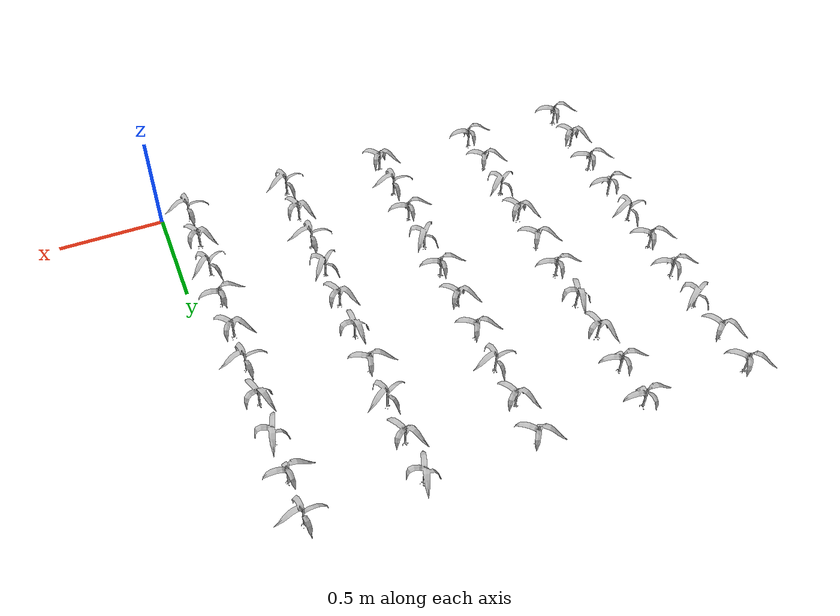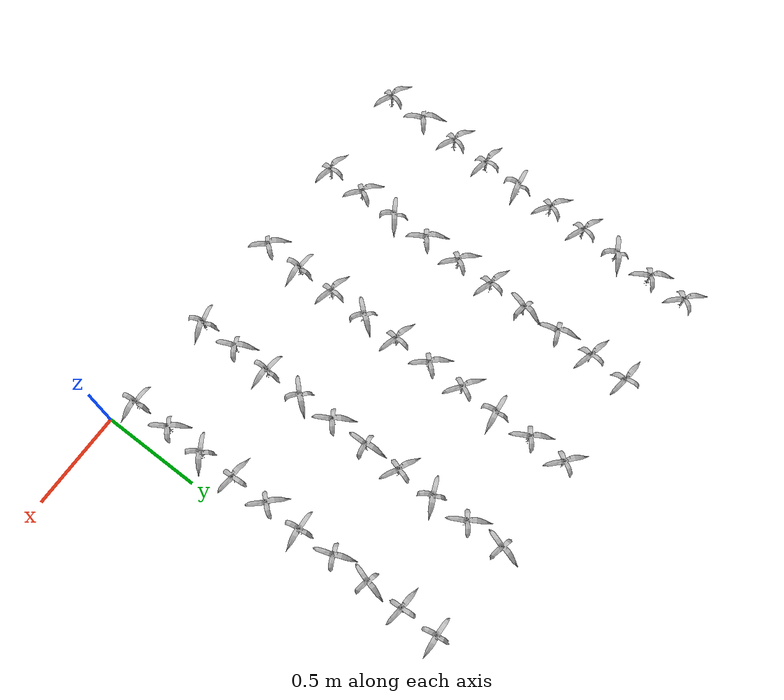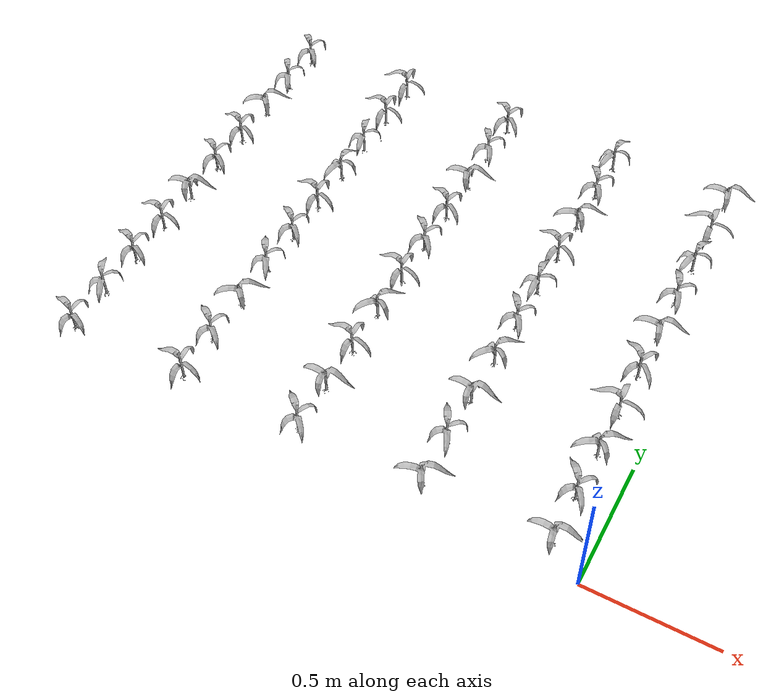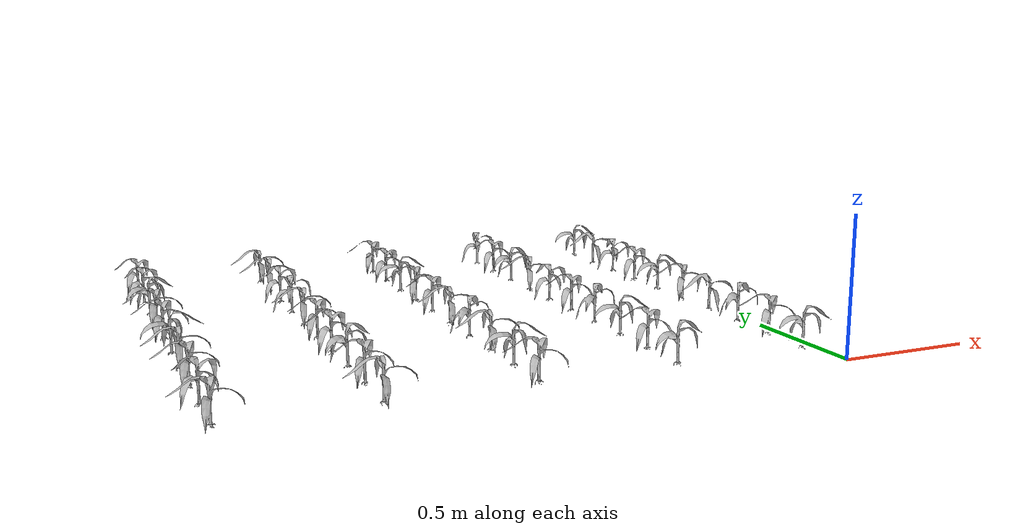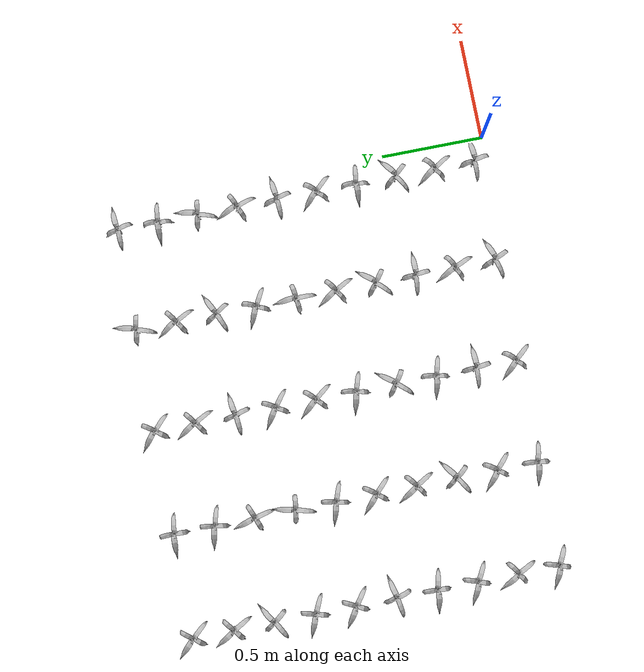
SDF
<sdf version="1.7">
 <world name="default">
  <model name="maize_-2.1093609480429203_0.07500000000000018">
   <static>1</static>
   <link name="link">
    <inertial>
     <mass>0.2</mass>
     <inertia>
      <ixx>0.166667</ixx>
      <ixy>0</ixy>
      <ixz>0</ixz>
      <iyy>0.166667</iyy>
      <iyz>0</iyz>
      <izz>0.166667</izz>
     </inertia>
    </inertial>
    <collision name="collision">
     <geometry><mesh><uri>model://corn_3/meshes/corn.dae</uri><scale>0.25 0.25 0.25</scale></mesh></geometry>
     <surface>
      <friction><ode><mu>0</mu><mu2>0</mu2></ode></friction>
      <contact><ode><kp>0</kp><kd>0</kd><max_vel>0</max_vel><min_depth>0.002</min_depth></ode></contact>
     </surface>
    </collision>
    <visual name="visual">
     <geometry><mesh><uri>model://corn_3/meshes/corn.dae</uri><scale>0.25 0.25 0.25</scale></mesh></geometry>
    </visual>
    <velocity_decay><linear>0</linear><angular>0</angular></velocity_decay>
   </link>
   <pose>-2.10936 0.075 0.05 0 -0 2.78687</pose>
  </model>
  <model name="maize_-2.1093609480429203_0.27000000000000046">
   <static>1</static>
   <link name="link">
    <inertial>
     <mass>0.2</mass>
     <inertia>
      <ixx>0.166667</ixx>
      <ixy>0</ixy>
      <ixz>0</ixz>
      <iyy>0.166667</iyy>
      <iyz>0</iyz>
      <izz>0.166667</izz>
     </inertia>
    </inertial>
    <collision name="collision">
     <geometry><mesh><uri>model://corn_3/meshes/corn.dae</uri><scale>0.25 0.25 0.25</scale></mesh></geometry>
     <surface>
      <friction><ode><mu>0</mu><mu2>0</mu2></ode></friction>
      <contact><ode><kp>0</kp><kd>0</kd><max_vel>0</max_vel><min_depth>0.002</min_depth></ode></contact>
     </surface>
    </collision>
    <visual name="visual">
     <geometry><mesh><uri>model://corn_3/meshes/corn.dae</uri><scale>0.25 0.25 0.25</scale></mesh></geometry>
    </visual>
    <velocity_decay><linear>0</linear><angular>0</angular></velocity_decay>
   </link>
   <pose>-2.10936 0.27 0.05 0 -0 2.14035</pose>
  </model>
  <model name="maize_-2.1093609480429203_0.46500000000000075">
   <static>1</static>
   <link name="link">
    <inertial>
     <mass>0.2</mass>
     <inertia>
      <ixx>0.166667</ixx>
      <ixy>0</ixy>
      <ixz>0</ixz>
      <iyy>0.166667</iyy>
      <iyz>0</iyz>
      <izz>0.166667</izz>
     </inertia>
    </inertial>
    <collision name="collision">
     <geometry><mesh><uri>model://corn_3/meshes/corn.dae</uri><scale>0.25 0.25 0.25</scale></mesh></geometry>
     <surface>
      <friction><ode><mu>0</mu><mu2>0</mu2></ode></friction>
      <contact><ode><kp>0</kp><kd>0</kd><max_vel>0</max_vel><min_depth>0.002</min_depth></ode></contact>
     </surface>
    </collision>
    <visual name="visual">
     <geometry><mesh><uri>model://corn_3/meshes/corn.dae</uri><scale>0.25 0.25 0.25</scale></mesh></geometry>
    </visual>
    <velocity_decay><linear>0</linear><angular>0</angular></velocity_decay>
   </link>
   <pose>-2.10936 0.465 0.05 0 -0 2.74985</pose>
  </model>
  <model name="maize_-2.1093609480429203_0.6600000000000001">
   <static>1</static>
   <link name="link">
    <inertial>
     <mass>0.2</mass>
     <inertia>
      <ixx>0.166667</ixx>
      <ixy>0</ixy>
      <ixz>0</ixz>
      <iyy>0.166667</iyy>
      <iyz>0</iyz>
      <izz>0.166667</izz>
     </inertia>
    </inertial>
    <collision name="collision">
     <geometry><mesh><uri>model://corn_3/meshes/corn.dae</uri><scale>0.25 0.25 0.25</scale></mesh></geometry>
     <surface>
      <friction><ode><mu>0</mu><mu2>0</mu2></ode></friction>
      <contact><ode><kp>0</kp><kd>0</kd><max_vel>0</max_vel><min_depth>0.002</min_depth></ode></contact>
     </surface>
    </collision>
    <visual name="visual">
     <geometry><mesh><uri>model://corn_3/meshes/corn.dae</uri><scale>0.25 0.25 0.25</scale></mesh></geometry>
    </visual>
    <velocity_decay><linear>0</linear><angular>0</angular></velocity_decay>
   </link>
   <pose>-2.10936 0.66 0.05 0 -0 3.03577</pose>
  </model>
  <model name="maize_-2.1093609480429203_0.8550000000000004">
   <static>1</static>
   <link name="link">
    <inertial>
     <mass>0.2</mass>
     <inertia>
      <ixx>0.166667</ixx>
      <ixy>0</ixy>
      <ixz>0</ixz>
      <iyy>0.166667</iyy>
      <iyz>0</iyz>
      <izz>0.166667</izz>
     </inertia>
    </inertial>
    <collision name="collision">
     <geometry><mesh><uri>model://corn_3/meshes/corn.dae</uri><scale>0.25 0.25 0.25</scale></mesh></geometry>
     <surface>
      <friction><ode><mu>0</mu><mu2>0</mu2></ode></friction>
      <contact><ode><kp>0</kp><kd>0</kd><max_vel>0</max_vel><min_depth>0.002</min_depth></ode></contact>
     </surface>
    </collision>
    <visual name="visual">
     <geometry><mesh><uri>model://corn_3/meshes/corn.dae</uri><scale>0.25 0.25 0.25</scale></mesh></geometry>
    </visual>
    <velocity_decay><linear>0</linear><angular>0</angular></velocity_decay>
   </link>
   <pose>-2.10936 0.855 0.05 0 -0 0.258273</pose>
  </model>
  <model name="maize_-2.1093609480429203_1.0500000000000007">
   <static>1</static>
   <link name="link">
    <inertial>
     <mass>0.2</mass>
     <inertia>
      <ixx>0.166667</ixx>
      <ixy>0</ixy>
      <ixz>0</ixz>
      <iyy>0.166667</iyy>
      <iyz>0</iyz>
      <izz>0.166667</izz>
     </inertia>
    </inertial>
    <collision name="collision">
     <geometry><mesh><uri>model://corn_3/meshes/corn.dae</uri><scale>0.25 0.25 0.25</scale></mesh></geometry>
     <surface>
      <friction><ode><mu>0</mu><mu2>0</mu2></ode></friction>
      <contact><ode><kp>0</kp><kd>0</kd><max_vel>0</max_vel><min_depth>0.002</min_depth></ode></contact>
     </surface>
    </collision>
    <visual name="visual">
     <geometry><mesh><uri>model://corn_3/meshes/corn.dae</uri><scale>0.25 0.25 0.25</scale></mesh></geometry>
    </visual>
    <velocity_decay><linear>0</linear><angular>0</angular></velocity_decay>
   </link>
   <pose>-2.10936 1.05 0.05 0 -0 2.61186</pose>
  </model>
  <model name="maize_-2.1093609480429203_1.245">
   <static>1</static>
   <link name="link">
    <inertial>
     <mass>0.2</mass>
     <inertia>
      <ixx>0.166667</ixx>
      <ixy>0</ixy>
      <ixz>0</ixz>
      <iyy>0.166667</iyy>
      <iyz>0</iyz>
      <izz>0.166667</izz>
     </inertia>
    </inertial>
    <collision name="collision">
     <geometry><mesh><uri>model://corn_3/meshes/corn.dae</uri><scale>0.25 0.25 0.25</scale></mesh></geometry>
     <surface>
      <friction><ode><mu>0</mu><mu2>0</mu2></ode></friction>
      <contact><ode><kp>0</kp><kd>0</kd><max_vel>0</max_vel><min_depth>0.002</min_depth></ode></contact>
     </surface>
    </collision>
    <visual name="visual">
     <geometry><mesh><uri>model://corn_3/meshes/corn.dae</uri><scale>0.25 0.25 0.25</scale></mesh></geometry>
    </visual>
    <velocity_decay><linear>0</linear><angular>0</angular></velocity_decay>
   </link>
   <pose>-2.10936 1.245 0.05 0 -0 2.80578</pose>
  </model>
  <model name="maize_-2.1093609480429203_1.4400000000000004">
   <static>1</static>
   <link name="link">
    <inertial>
     <mass>0.2</mass>
     <inertia>
      <ixx>0.166667</ixx>
      <ixy>0</ixy>
      <ixz>0</ixz>
      <iyy>0.166667</iyy>
      <iyz>0</iyz>
      <izz>0.166667</izz>
     </inertia>
    </inertial>
    <collision name="collision">
     <geometry><mesh><uri>model://corn_3/meshes/corn.dae</uri><scale>0.25 0.25 0.25</scale></mesh></geometry>
     <surface>
      <friction><ode><mu>0</mu><mu2>0</mu2></ode></friction>
      <contact><ode><kp>0</kp><kd>0</kd><max_vel>0</max_vel><min_depth>0.002</min_depth></ode></contact>
     </surface>
    </collision>
    <visual name="visual">
     <geometry><mesh><uri>model://corn_3/meshes/corn.dae</uri><scale>0.25 0.25 0.25</scale></mesh></geometry>
    </visual>
    <velocity_decay><linear>0</linear><angular>0</angular></velocity_decay>
   </link>
   <pose>-2.10936 1.44 0.05 0 -0 0.617863</pose>
  </model>
  <model name="maize_-2.1093609480429203_1.6350000000000007">
   <static>1</static>
   <link name="link">
    <inertial>
     <mass>0.2</mass>
     <inertia>
      <ixx>0.166667</ixx>
      <ixy>0</ixy>
      <ixz>0</ixz>
      <iyy>0.166667</iyy>
      <iyz>0</iyz>
      <izz>0.166667</izz>
     </inertia>
    </inertial>
    <collision name="collision">
     <geometry><mesh><uri>model://corn_3/meshes/corn.dae</uri><scale>0.25 0.25 0.25</scale></mesh></geometry>
     <surface>
      <friction><ode><mu>0</mu><mu2>0</mu2></ode></friction>
      <contact><ode><kp>0</kp><kd>0</kd><max_vel>0</max_vel><min_depth>0.002</min_depth></ode></contact>
     </surface>
    </collision>
    <visual name="visual">
     <geometry><mesh><uri>model://corn_3/meshes/corn.dae</uri><scale>0.25 0.25 0.25</scale></mesh></geometry>
    </visual>
    <velocity_decay><linear>0</linear><angular>0</angular></velocity_decay>
   </link>
   <pose>-2.10936 1.635 0.05 0 -0 2.17049</pose>
  </model>
  <model name="maize_-2.1093609480429203_1.83">
   <static>1</static>
   <link name="link">
    <inertial>
     <mass>0.2</mass>
     <inertia>
      <ixx>0.166667</ixx>
      <ixy>0</ixy>
      <ixz>0</ixz>
      <iyy>0.166667</iyy>
      <iyz>0</iyz>
      <izz>0.166667</izz>
     </inertia>
    </inertial>
    <collision name="collision">
     <geometry><mesh><uri>model://corn_3/meshes/corn.dae</uri><scale>0.25 0.25 0.25</scale></mesh></geometry>
     <surface>
      <friction><ode><mu>0</mu><mu2>0</mu2></ode></friction>
      <contact><ode><kp>0</kp><kd>0</kd><max_vel>0</max_vel><min_depth>0.002</min_depth></ode></contact>
     </surface>
    </collision>
    <visual name="visual">
     <geometry><mesh><uri>model://corn_3/meshes/corn.dae</uri><scale>0.25 0.25 0.25</scale></mesh></geometry>
    </visual>
    <velocity_decay><linear>0</linear><angular>0</angular></velocity_decay>
   </link>
   <pose>-2.10936 1.83 0.05 0 -0 2.40422</pose>
  </model>
  <model name="maize_-1.6134747127982658_0.07500000000000018">
   <static>1</static>
   <link name="link">
    <inertial>
     <mass>0.2</mass>
     <inertia>
      <ixx>0.166667</ixx>
      <ixy>0</ixy>
      <ixz>0</ixz>
      <iyy>0.166667</iyy>
      <iyz>0</iyz>
      <izz>0.166667</izz>
     </inertia>
    </inertial>
    <collision name="collision">
     <geometry><mesh><uri>model://corn_3/meshes/corn.dae</uri><scale>0.25 0.25 0.25</scale></mesh></geometry>
     <surface>
      <friction><ode><mu>0</mu><mu2>0</mu2></ode></friction>
      <contact><ode><kp>0</kp><kd>0</kd><max_vel>0</max_vel><min_depth>0.002</min_depth></ode></contact>
     </surface>
    </collision>
    <visual name="visual">
     <geometry><mesh><uri>model://corn_3/meshes/corn.dae</uri><scale>0.25 0.25 0.25</scale></mesh></geometry>
    </visual>
    <velocity_decay><linear>0</linear><angular>0</angular></velocity_decay>
   </link>
   <pose>-1.61347 0.075 0.05 0 -0 3.01326</pose>
  </model>
  <model name="maize_-1.6134747127982658_0.27000000000000046">
   <static>1</static>
   <link name="link">
    <inertial>
     <mass>0.2</mass>
     <inertia>
      <ixx>0.166667</ixx>
      <ixy>0</ixy>
      <ixz>0</ixz>
      <iyy>0.166667</iyy>
      <iyz>0</iyz>
      <izz>0.166667</izz>
     </inertia>
    </inertial>
    <collision name="collision">
     <geometry><mesh><uri>model://corn_3/meshes/corn.dae</uri><scale>0.25 0.25 0.25</scale></mesh></geometry>
     <surface>
      <friction><ode><mu>0</mu><mu2>0</mu2></ode></friction>
      <contact><ode><kp>0</kp><kd>0</kd><max_vel>0</max_vel><min_depth>0.002</min_depth></ode></contact>
     </surface>
    </collision>
    <visual name="visual">
     <geometry><mesh><uri>model://corn_3/meshes/corn.dae</uri><scale>0.25 0.25 0.25</scale></mesh></geometry>
    </visual>
    <velocity_decay><linear>0</linear><angular>0</angular></velocity_decay>
   </link>
   <pose>-1.61347 0.27 0.05 0 -0 2.51277</pose>
  </model>
  <model name="maize_-1.6134747127982658_0.46500000000000075">
   <static>1</static>
   <link name="link">
    <inertial>
     <mass>0.2</mass>
     <inertia>
      <ixx>0.166667</ixx>
      <ixy>0</ixy>
      <ixz>0</ixz>
      <iyy>0.166667</iyy>
      <iyz>0</iyz>
      <izz>0.166667</izz>
     </inertia>
    </inertial>
    <collision name="collision">
     <geometry><mesh><uri>model://corn_3/meshes/corn.dae</uri><scale>0.25 0.25 0.25</scale></mesh></geometry>
     <surface>
      <friction><ode><mu>0</mu><mu2>0</mu2></ode></friction>
      <contact><ode><kp>0</kp><kd>0</kd><max_vel>0</max_vel><min_depth>0.002</min_depth></ode></contact>
     </surface>
    </collision>
    <visual name="visual">
     <geometry><mesh><uri>model://corn_3/meshes/corn.dae</uri><scale>0.25 0.25 0.25</scale></mesh></geometry>
    </visual>
    <velocity_decay><linear>0</linear><angular>0</angular></velocity_decay>
   </link>
   <pose>-1.61347 0.465 0.05 0 -0 0.662346</pose>
  </model>
  <model name="maize_-1.6134747127982658_0.6600000000000001">
   <static>1</static>
   <link name="link">
    <inertial>
     <mass>0.2</mass>
     <inertia>
      <ixx>0.166667</ixx>
      <ixy>0</ixy>
      <ixz>0</ixz>
      <iyy>0.166667</iyy>
      <iyz>0</iyz>
      <izz>0.166667</izz>
     </inertia>
    </inertial>
    <collision name="collision">
     <geometry><mesh><uri>model://corn_3/meshes/corn.dae</uri><scale>0.25 0.25 0.25</scale></mesh></geometry>
     <surface>
      <friction><ode><mu>0</mu><mu2>0</mu2></ode></friction>
      <contact><ode><kp>0</kp><kd>0</kd><max_vel>0</max_vel><min_depth>0.002</min_depth></ode></contact>
     </surface>
    </collision>
    <visual name="visual">
     <geometry><mesh><uri>model://corn_3/meshes/corn.dae</uri><scale>0.25 0.25 0.25</scale></mesh></geometry>
    </visual>
    <velocity_decay><linear>0</linear><angular>0</angular></velocity_decay>
   </link>
   <pose>-1.61347 0.66 0.05 0 -0 2.19496</pose>
  </model>
  <model name="maize_-1.6134747127982658_0.8550000000000004">
   <static>1</static>
   <link name="link">
    <inertial>
     <mass>0.2</mass>
     <inertia>
      <ixx>0.166667</ixx>
      <ixy>0</ixy>
      <ixz>0</ixz>
      <iyy>0.166667</iyy>
      <iyz>0</iyz>
      <izz>0.166667</izz>
     </inertia>
    </inertial>
    <collision name="collision">
     <geometry><mesh><uri>model://corn_3/meshes/corn.dae</uri><scale>0.25 0.25 0.25</scale></mesh></geometry>
     <surface>
      <friction><ode><mu>0</mu><mu2>0</mu2></ode></friction>
      <contact><ode><kp>0</kp><kd>0</kd><max_vel>0</max_vel><min_depth>0.002</min_depth></ode></contact>
     </surface>
    </collision>
    <visual name="visual">
     <geometry><mesh><uri>model://corn_3/meshes/corn.dae</uri><scale>0.25 0.25 0.25</scale></mesh></geometry>
    </visual>
    <velocity_decay><linear>0</linear><angular>0</angular></velocity_decay>
   </link>
   <pose>-1.61347 0.855 0.05 0 -0 2.46315</pose>
  </model>
  <model name="maize_-1.6134747127982658_1.0500000000000007">
   <static>1</static>
   <link name="link">
    <inertial>
     <mass>0.2</mass>
     <inertia>
      <ixx>0.166667</ixx>
      <ixy>0</ixy>
      <ixz>0</ixz>
      <iyy>0.166667</iyy>
      <iyz>0</iyz>
      <izz>0.166667</izz>
     </inertia>
    </inertial>
    <collision name="collision">
     <geometry><mesh><uri>model://corn_3/meshes/corn.dae</uri><scale>0.25 0.25 0.25</scale></mesh></geometry>
     <surface>
      <friction><ode><mu>0</mu><mu2>0</mu2></ode></friction>
      <contact><ode><kp>0</kp><kd>0</kd><max_vel>0</max_vel><min_depth>0.002</min_depth></ode></contact>
     </surface>
    </collision>
    <visual name="visual">
     <geometry><mesh><uri>model://corn_3/meshes/corn.dae</uri><scale>0.25 0.25 0.25</scale></mesh></geometry>
    </visual>
    <velocity_decay><linear>0</linear><angular>0</angular></velocity_decay>
   </link>
   <pose>-1.61347 1.05 0.05 0 -0 2.90169</pose>
  </model>
  <model name="maize_-1.6134747127982658_1.245">
   <static>1</static>
   <link name="link">
    <inertial>
     <mass>0.2</mass>
     <inertia>
      <ixx>0.166667</ixx>
      <ixy>0</ixy>
      <ixz>0</ixz>
      <iyy>0.166667</iyy>
      <iyz>0</iyz>
      <izz>0.166667</izz>
     </inertia>
    </inertial>
    <collision name="collision">
     <geometry><mesh><uri>model://corn_3/meshes/corn.dae</uri><scale>0.25 0.25 0.25</scale></mesh></geometry>
     <surface>
      <friction><ode><mu>0</mu><mu2>0</mu2></ode></friction>
      <contact><ode><kp>0</kp><kd>0</kd><max_vel>0</max_vel><min_depth>0.002</min_depth></ode></contact>
     </surface>
    </collision>
    <visual name="visual">
     <geometry><mesh><uri>model://corn_3/meshes/corn.dae</uri><scale>0.25 0.25 0.25</scale></mesh></geometry>
    </visual>
    <velocity_decay><linear>0</linear><angular>0</angular></velocity_decay>
   </link>
   <pose>-1.61347 1.245 0.05 0 -0 1.38514</pose>
  </model>
  <model name="maize_-1.6134747127982658_1.4400000000000004">
   <static>1</static>
   <link name="link">
    <inertial>
     <mass>0.2</mass>
     <inertia>
      <ixx>0.166667</ixx>
      <ixy>0</ixy>
      <ixz>0</ixz>
      <iyy>0.166667</iyy>
      <iyz>0</iyz>
      <izz>0.166667</izz>
     </inertia>
    </inertial>
    <collision name="collision">
     <geometry><mesh><uri>model://corn_3/meshes/corn.dae</uri><scale>0.25 0.25 0.25</scale></mesh></geometry>
     <surface>
      <friction><ode><mu>0</mu><mu2>0</mu2></ode></friction>
      <contact><ode><kp>0</kp><kd>0</kd><max_vel>0</max_vel><min_depth>0.002</min_depth></ode></contact>
     </surface>
    </collision>
    <visual name="visual">
     <geometry><mesh><uri>model://corn_3/meshes/corn.dae</uri><scale>0.25 0.25 0.25</scale></mesh></geometry>
    </visual>
    <velocity_decay><linear>0</linear><angular>0</angular></velocity_decay>
   </link>
   <pose>-1.61347 1.44 0.05 0 -0 1.8957</pose>
  </model>
  <model name="maize_-1.6134747127982658_1.6350000000000007">
   <static>1</static>
   <link name="link">
    <inertial>
     <mass>0.2</mass>
     <inertia>
      <ixx>0.166667</ixx>
      <ixy>0</ixy>
      <ixz>0</ixz>
      <iyy>0.166667</iyy>
      <iyz>0</iyz>
      <izz>0.166667</izz>
     </inertia>
    </inertial>
    <collision name="collision">
     <geometry><mesh><uri>model://corn_3/meshes/corn.dae</uri><scale>0.25 0.25 0.25</scale></mesh></geometry>
     <surface>
      <friction><ode><mu>0</mu><mu2>0</mu2></ode></friction>
      <contact><ode><kp>0</kp><kd>0</kd><max_vel>0</max_vel><min_depth>0.002</min_depth></ode></contact>
     </surface>
    </collision>
    <visual name="visual">
     <geometry><mesh><uri>model://corn_3/meshes/corn.dae</uri><scale>0.25 0.25 0.25</scale></mesh></geometry>
    </visual>
    <velocity_decay><linear>0</linear><angular>0</angular></velocity_decay>
   </link>
   <pose>-1.61347 1.635 0.05 0 -0 2.96075</pose>
  </model>
  <model name="maize_-1.6134747127982658_1.83">
   <static>1</static>
   <link name="link">
    <inertial>
     <mass>0.2</mass>
     <inertia>
      <ixx>0.166667</ixx>
      <ixy>0</ixy>
      <ixz>0</ixz>
      <iyy>0.166667</iyy>
      <iyz>0</iyz>
      <izz>0.166667</izz>
     </inertia>
    </inertial>
    <collision name="collision">
     <geometry><mesh><uri>model://corn_3/meshes/corn.dae</uri><scale>0.25 0.25 0.25</scale></mesh></geometry>
     <surface>
      <friction><ode><mu>0</mu><mu2>0</mu2></ode></friction>
      <contact><ode><kp>0</kp><kd>0</kd><max_vel>0</max_vel><min_depth>0.002</min_depth></ode></contact>
     </surface>
    </collision>
    <visual name="visual">
     <geometry><mesh><uri>model://corn_3/meshes/corn.dae</uri><scale>0.25 0.25 0.25</scale></mesh></geometry>
    </visual>
    <velocity_decay><linear>0</linear><angular>0</angular></velocity_decay>
   </link>
   <pose>-1.61347 1.83 0.05 0 -0 3.10991</pose>
  </model>
  <model name="maize_-1.1183337078909452_0.07500000000000018">
   <static>1</static>
   <link name="link">
    <inertial>
     <mass>0.2</mass>
     <inertia>
      <ixx>0.166667</ixx>
      <ixy>0</ixy>
      <ixz>0</ixz>
      <iyy>0.166667</iyy>
      <iyz>0</iyz>
      <izz>0.166667</izz>
     </inertia>
    </inertial>
    <collision name="collision">
     <geometry><mesh><uri>model://corn_3/meshes/corn.dae</uri><scale>0.25 0.25 0.25</scale></mesh></geometry>
     <surface>
      <friction><ode><mu>0</mu><mu2>0</mu2></ode></friction>
      <contact><ode><kp>0</kp><kd>0</kd><max_vel>0</max_vel><min_depth>0.002</min_depth></ode></contact>
     </surface>
    </collision>
    <visual name="visual">
     <geometry><mesh><uri>model://corn_3/meshes/corn.dae</uri><scale>0.25 0.25 0.25</scale></mesh></geometry>
    </visual>
    <velocity_decay><linear>0</linear><angular>0</angular></velocity_decay>
   </link>
   <pose>-1.11833 0.075 0.05 0 -0 2.38925</pose>
  </model>
  <model name="maize_-1.1183337078909452_0.27000000000000046">
   <static>1</static>
   <link name="link">
    <inertial>
     <mass>0.2</mass>
     <inertia>
      <ixx>0.166667</ixx>
      <ixy>0</ixy>
      <ixz>0</ixz>
      <iyy>0.166667</iyy>
      <iyz>0</iyz>
      <izz>0.166667</izz>
     </inertia>
    </inertial>
    <collision name="collision">
     <geometry><mesh><uri>model://corn_3/meshes/corn.dae</uri><scale>0.25 0.25 0.25</scale></mesh></geometry>
     <surface>
      <friction><ode><mu>0</mu><mu2>0</mu2></ode></friction>
      <contact><ode><kp>0</kp><kd>0</kd><max_vel>0</max_vel><min_depth>0.002</min_depth></ode></contact>
     </surface>
    </collision>
    <visual name="visual">
     <geometry><mesh><uri>model://corn_3/meshes/corn.dae</uri><scale>0.25 0.25 0.25</scale></mesh></geometry>
    </visual>
    <velocity_decay><linear>0</linear><angular>0</angular></velocity_decay>
   </link>
   <pose>-1.11833 0.27 0.05 0 -0 0.053479</pose>
  </model>
  <model name="maize_-1.1183337078909452_0.46500000000000075">
   <static>1</static>
   <link name="link">
    <inertial>
     <mass>0.2</mass>
     <inertia>
      <ixx>0.166667</ixx>
      <ixy>0</ixy>
      <ixz>0</ixz>
      <iyy>0.166667</iyy>
      <iyz>0</iyz>
      <izz>0.166667</izz>
     </inertia>
    </inertial>
    <collision name="collision">
     <geometry><mesh><uri>model://corn_3/meshes/corn.dae</uri><scale>0.25 0.25 0.25</scale></mesh></geometry>
     <surface>
      <friction><ode><mu>0</mu><mu2>0</mu2></ode></friction>
      <contact><ode><kp>0</kp><kd>0</kd><max_vel>0</max_vel><min_depth>0.002</min_depth></ode></contact>
     </surface>
    </collision>
    <visual name="visual">
     <geometry><mesh><uri>model://corn_3/meshes/corn.dae</uri><scale>0.25 0.25 0.25</scale></mesh></geometry>
    </visual>
    <velocity_decay><linear>0</linear><angular>0</angular></velocity_decay>
   </link>
   <pose>-1.11833 0.465 0.05 0 -0 2.97363</pose>
  </model>
  <model name="maize_-1.1183337078909452_0.6600000000000001">
   <static>1</static>
   <link name="link">
    <inertial>
     <mass>0.2</mass>
     <inertia>
      <ixx>0.166667</ixx>
      <ixy>0</ixy>
      <ixz>0</ixz>
      <iyy>0.166667</iyy>
      <iyz>0</iyz>
      <izz>0.166667</izz>
     </inertia>
    </inertial>
    <collision name="collision">
     <geometry><mesh><uri>model://corn_3/meshes/corn.dae</uri><scale>0.25 0.25 0.25</scale></mesh></geometry>
     <surface>
      <friction><ode><mu>0</mu><mu2>0</mu2></ode></friction>
      <contact><ode><kp>0</kp><kd>0</kd><max_vel>0</max_vel><min_depth>0.002</min_depth></ode></contact>
     </surface>
    </collision>
    <visual name="visual">
     <geometry><mesh><uri>model://corn_3/meshes/corn.dae</uri><scale>0.25 0.25 0.25</scale></mesh></geometry>
    </visual>
    <velocity_decay><linear>0</linear><angular>0</angular></velocity_decay>
   </link>
   <pose>-1.11833 0.66 0.05 0 -0 0.943562</pose>
  </model>
  <model name="maize_-1.1183337078909452_0.8550000000000004">
   <static>1</static>
   <link name="link">
    <inertial>
     <mass>0.2</mass>
     <inertia>
      <ixx>0.166667</ixx>
      <ixy>0</ixy>
      <ixz>0</ixz>
      <iyy>0.166667</iyy>
      <iyz>0</iyz>
      <izz>0.166667</izz>
     </inertia>
    </inertial>
    <collision name="collision">
     <geometry><mesh><uri>model://corn_3/meshes/corn.dae</uri><scale>0.25 0.25 0.25</scale></mesh></geometry>
     <surface>
      <friction><ode><mu>0</mu><mu2>0</mu2></ode></friction>
      <contact><ode><kp>0</kp><kd>0</kd><max_vel>0</max_vel><min_depth>0.002</min_depth></ode></contact>
     </surface>
    </collision>
    <visual name="visual">
     <geometry><mesh><uri>model://corn_3/meshes/corn.dae</uri><scale>0.25 0.25 0.25</scale></mesh></geometry>
    </visual>
    <velocity_decay><linear>0</linear><angular>0</angular></velocity_decay>
   </link>
   <pose>-1.11833 0.855 0.05 0 -0 2.94059</pose>
  </model>
  <model name="maize_-1.1183337078909452_1.0500000000000007">
   <static>1</static>
   <link name="link">
    <inertial>
     <mass>0.2</mass>
     <inertia>
      <ixx>0.166667</ixx>
      <ixy>0</ixy>
      <ixz>0</ixz>
      <iyy>0.166667</iyy>
      <iyz>0</iyz>
      <izz>0.166667</izz>
     </inertia>
    </inertial>
    <collision name="collision">
     <geometry><mesh><uri>model://corn_3/meshes/corn.dae</uri><scale>0.25 0.25 0.25</scale></mesh></geometry>
     <surface>
      <friction><ode><mu>0</mu><mu2>0</mu2></ode></friction>
      <contact><ode><kp>0</kp><kd>0</kd><max_vel>0</max_vel><min_depth>0.002</min_depth></ode></contact>
     </surface>
    </collision>
    <visual name="visual">
     <geometry><mesh><uri>model://corn_3/meshes/corn.dae</uri><scale>0.25 0.25 0.25</scale></mesh></geometry>
    </visual>
    <velocity_decay><linear>0</linear><angular>0</angular></velocity_decay>
   </link>
   <pose>-1.11833 1.05 0.05 0 -0 2.33226</pose>
  </model>
  <model name="maize_-1.1183337078909452_1.245">
   <static>1</static>
   <link name="link">
    <inertial>
     <mass>0.2</mass>
     <inertia>
      <ixx>0.166667</ixx>
      <ixy>0</ixy>
      <ixz>0</ixz>
      <iyy>0.166667</iyy>
      <iyz>0</iyz>
      <izz>0.166667</izz>
     </inertia>
    </inertial>
    <collision name="collision">
     <geometry><mesh><uri>model://corn_3/meshes/corn.dae</uri><scale>0.25 0.25 0.25</scale></mesh></geometry>
     <surface>
      <friction><ode><mu>0</mu><mu2>0</mu2></ode></friction>
      <contact><ode><kp>0</kp><kd>0</kd><max_vel>0</max_vel><min_depth>0.002</min_depth></ode></contact>
     </surface>
    </collision>
    <visual name="visual">
     <geometry><mesh><uri>model://corn_3/meshes/corn.dae</uri><scale>0.25 0.25 0.25</scale></mesh></geometry>
    </visual>
    <velocity_decay><linear>0</linear><angular>0</angular></velocity_decay>
   </link>
   <pose>-1.11833 1.245 0.05 0 -0 2.59856</pose>
  </model>
  <model name="maize_-1.1183337078909452_1.4400000000000004">
   <static>1</static>
   <link name="link">
    <inertial>
     <mass>0.2</mass>
     <inertia>
      <ixx>0.166667</ixx>
      <ixy>0</ixy>
      <ixz>0</ixz>
      <iyy>0.166667</iyy>
      <iyz>0</iyz>
      <izz>0.166667</izz>
     </inertia>
    </inertial>
    <collision name="collision">
     <geometry><mesh><uri>model://corn_3/meshes/corn.dae</uri><scale>0.25 0.25 0.25</scale></mesh></geometry>
     <surface>
      <friction><ode><mu>0</mu><mu2>0</mu2></ode></friction>
      <contact><ode><kp>0</kp><kd>0</kd><max_vel>0</max_vel><min_depth>0.002</min_depth></ode></contact>
     </surface>
    </collision>
    <visual name="visual">
     <geometry><mesh><uri>model://corn_3/meshes/corn.dae</uri><scale>0.25 0.25 0.25</scale></mesh></geometry>
    </visual>
    <velocity_decay><linear>0</linear><angular>0</angular></velocity_decay>
   </link>
   <pose>-1.11833 1.44 0.05 0 -0 0.19958</pose>
  </model>
  <model name="maize_-1.1183337078909452_1.6350000000000007">
   <static>1</static>
   <link name="link">
    <inertial>
     <mass>0.2</mass>
     <inertia>
      <ixx>0.166667</ixx>
      <ixy>0</ixy>
      <ixz>0</ixz>
      <iyy>0.166667</iyy>
      <iyz>0</iyz>
      <izz>0.166667</izz>
     </inertia>
    </inertial>
    <collision name="collision">
     <geometry><mesh><uri>model://corn_3/meshes/corn.dae</uri><scale>0.25 0.25 0.25</scale></mesh></geometry>
     <surface>
      <friction><ode><mu>0</mu><mu2>0</mu2></ode></friction>
      <contact><ode><kp>0</kp><kd>0</kd><max_vel>0</max_vel><min_depth>0.002</min_depth></ode></contact>
     </surface>
    </collision>
    <visual name="visual">
     <geometry><mesh><uri>model://corn_3/meshes/corn.dae</uri><scale>0.25 0.25 0.25</scale></mesh></geometry>
    </visual>
    <velocity_decay><linear>0</linear><angular>0</angular></velocity_decay>
   </link>
   <pose>-1.11833 1.635 0.05 0 -0 2.16001</pose>
  </model>
  <model name="maize_-1.1183337078909452_1.83">
   <static>1</static>
   <link name="link">
    <inertial>
     <mass>0.2</mass>
     <inertia>
      <ixx>0.166667</ixx>
      <ixy>0</ixy>
      <ixz>0</ixz>
      <iyy>0.166667</iyy>
      <iyz>0</iyz>
      <izz>0.166667</izz>
     </inertia>
    </inertial>
    <collision name="collision">
     <geometry><mesh><uri>model://corn_3/meshes/corn.dae</uri><scale>0.25 0.25 0.25</scale></mesh></geometry>
     <surface>
      <friction><ode><mu>0</mu><mu2>0</mu2></ode></friction>
      <contact><ode><kp>0</kp><kd>0</kd><max_vel>0</max_vel><min_depth>0.002</min_depth></ode></contact>
     </surface>
    </collision>
    <visual name="visual">
     <geometry><mesh><uri>model://corn_3/meshes/corn.dae</uri><scale>0.25 0.25 0.25</scale></mesh></geometry>
    </visual>
    <velocity_decay><linear>0</linear><angular>0</angular></velocity_decay>
   </link>
   <pose>-1.11833 1.83 0.05 0 -0 2.48328</pose>
  </model>
  <model name="maize_-0.6239370944114593_0.07500000000000018">
   <static>1</static>
   <link name="link">
    <inertial>
     <mass>0.2</mass>
     <inertia>
      <ixx>0.166667</ixx>
      <ixy>0</ixy>
      <ixz>0</ixz>
      <iyy>0.166667</iyy>
      <iyz>0</iyz>
      <izz>0.166667</izz>
     </inertia>
    </inertial>
    <collision name="collision">
     <geometry><mesh><uri>model://corn_3/meshes/corn.dae</uri><scale>0.25 0.25 0.25</scale></mesh></geometry>
     <surface>
      <friction><ode><mu>0</mu><mu2>0</mu2></ode></friction>
      <contact><ode><kp>0</kp><kd>0</kd><max_vel>0</max_vel><min_depth>0.002</min_depth></ode></contact>
     </surface>
    </collision>
    <visual name="visual">
     <geometry><mesh><uri>model://corn_3/meshes/corn.dae</uri><scale>0.25 0.25 0.25</scale></mesh></geometry>
    </visual>
    <velocity_decay><linear>0</linear><angular>0</angular></velocity_decay>
   </link>
   <pose>-0.623937 0.075 0.05 0 -0 0.356174</pose>
  </model>
  <model name="maize_-0.6239370944114593_0.27000000000000046">
   <static>1</static>
   <link name="link">
    <inertial>
     <mass>0.2</mass>
     <inertia>
      <ixx>0.166667</ixx>
      <ixy>0</ixy>
      <ixz>0</ixz>
      <iyy>0.166667</iyy>
      <iyz>0</iyz>
      <izz>0.166667</izz>
     </inertia>
    </inertial>
    <collision name="collision">
     <geometry><mesh><uri>model://corn_3/meshes/corn.dae</uri><scale>0.25 0.25 0.25</scale></mesh></geometry>
     <surface>
      <friction><ode><mu>0</mu><mu2>0</mu2></ode></friction>
      <contact><ode><kp>0</kp><kd>0</kd><max_vel>0</max_vel><min_depth>0.002</min_depth></ode></contact>
     </surface>
    </collision>
    <visual name="visual">
     <geometry><mesh><uri>model://corn_3/meshes/corn.dae</uri><scale>0.25 0.25 0.25</scale></mesh></geometry>
    </visual>
    <velocity_decay><linear>0</linear><angular>0</angular></velocity_decay>
   </link>
   <pose>-0.623937 0.27 0.05 0 -0 2.08154</pose>
  </model>
  <model name="maize_-0.6239370944114593_0.46500000000000075">
   <static>1</static>
   <link name="link">
    <inertial>
     <mass>0.2</mass>
     <inertia>
      <ixx>0.166667</ixx>
      <ixy>0</ixy>
      <ixz>0</ixz>
      <iyy>0.166667</iyy>
      <iyz>0</iyz>
      <izz>0.166667</izz>
     </inertia>
    </inertial>
    <collision name="collision">
     <geometry><mesh><uri>model://corn_3/meshes/corn.dae</uri><scale>0.25 0.25 0.25</scale></mesh></geometry>
     <surface>
      <friction><ode><mu>0</mu><mu2>0</mu2></ode></friction>
      <contact><ode><kp>0</kp><kd>0</kd><max_vel>0</max_vel><min_depth>0.002</min_depth></ode></contact>
     </surface>
    </collision>
    <visual name="visual">
     <geometry><mesh><uri>model://corn_3/meshes/corn.dae</uri><scale>0.25 0.25 0.25</scale></mesh></geometry>
    </visual>
    <velocity_decay><linear>0</linear><angular>0</angular></velocity_decay>
   </link>
   <pose>-0.623937 0.465 0.05 0 -0 0.009507</pose>
  </model>
  <model name="maize_-0.6239370944114593_0.6600000000000001">
   <static>1</static>
   <link name="link">
    <inertial>
     <mass>0.2</mass>
     <inertia>
      <ixx>0.166667</ixx>
      <ixy>0</ixy>
      <ixz>0</ixz>
      <iyy>0.166667</iyy>
      <iyz>0</iyz>
      <izz>0.166667</izz>
     </inertia>
    </inertial>
    <collision name="collision">
     <geometry><mesh><uri>model://corn_3/meshes/corn.dae</uri><scale>0.25 0.25 0.25</scale></mesh></geometry>
     <surface>
      <friction><ode><mu>0</mu><mu2>0</mu2></ode></friction>
      <contact><ode><kp>0</kp><kd>0</kd><max_vel>0</max_vel><min_depth>0.002</min_depth></ode></contact>
     </surface>
    </collision>
    <visual name="visual">
     <geometry><mesh><uri>model://corn_3/meshes/corn.dae</uri><scale>0.25 0.25 0.25</scale></mesh></geometry>
    </visual>
    <velocity_decay><linear>0</linear><angular>0</angular></velocity_decay>
   </link>
   <pose>-0.623937 0.66 0.05 0 -0 0.888532</pose>
  </model>
  <model name="maize_-0.6239370944114593_0.8550000000000004">
   <static>1</static>
   <link name="link">
    <inertial>
     <mass>0.2</mass>
     <inertia>
      <ixx>0.166667</ixx>
      <ixy>0</ixy>
      <ixz>0</ixz>
      <iyy>0.166667</iyy>
      <iyz>0</iyz>
      <izz>0.166667</izz>
     </inertia>
    </inertial>
    <collision name="collision">
     <geometry><mesh><uri>model://corn_3/meshes/corn.dae</uri><scale>0.25 0.25 0.25</scale></mesh></geometry>
     <surface>
      <friction><ode><mu>0</mu><mu2>0</mu2></ode></friction>
      <contact><ode><kp>0</kp><kd>0</kd><max_vel>0</max_vel><min_depth>0.002</min_depth></ode></contact>
     </surface>
    </collision>
    <visual name="visual">
     <geometry><mesh><uri>model://corn_3/meshes/corn.dae</uri><scale>0.25 0.25 0.25</scale></mesh></geometry>
    </visual>
    <velocity_decay><linear>0</linear><angular>0</angular></velocity_decay>
   </link>
   <pose>-0.623937 0.855 0.05 0 -0 2.16526</pose>
  </model>
  <model name="maize_-0.6239370944114593_1.0500000000000007">
   <static>1</static>
   <link name="link">
    <inertial>
     <mass>0.2</mass>
     <inertia>
      <ixx>0.166667</ixx>
      <ixy>0</ixy>
      <ixz>0</ixz>
      <iyy>0.166667</iyy>
      <iyz>0</iyz>
      <izz>0.166667</izz>
     </inertia>
    </inertial>
    <collision name="collision">
     <geometry><mesh><uri>model://corn_3/meshes/corn.dae</uri><scale>0.25 0.25 0.25</scale></mesh></geometry>
     <surface>
      <friction><ode><mu>0</mu><mu2>0</mu2></ode></friction>
      <contact><ode><kp>0</kp><kd>0</kd><max_vel>0</max_vel><min_depth>0.002</min_depth></ode></contact>
     </surface>
    </collision>
    <visual name="visual">
     <geometry><mesh><uri>model://corn_3/meshes/corn.dae</uri><scale>0.25 0.25 0.25</scale></mesh></geometry>
    </visual>
    <velocity_decay><linear>0</linear><angular>0</angular></velocity_decay>
   </link>
   <pose>-0.623937 1.05 0.05 0 -0 1.67302</pose>
  </model>
  <model name="maize_-0.6239370944114593_1.245">
   <static>1</static>
   <link name="link">
    <inertial>
     <mass>0.2</mass>
     <inertia>
      <ixx>0.166667</ixx>
      <ixy>0</ixy>
      <ixz>0</ixz>
      <iyy>0.166667</iyy>
      <iyz>0</iyz>
      <izz>0.166667</izz>
     </inertia>
    </inertial>
    <collision name="collision">
     <geometry><mesh><uri>model://corn_3/meshes/corn.dae</uri><scale>0.25 0.25 0.25</scale></mesh></geometry>
     <surface>
      <friction><ode><mu>0</mu><mu2>0</mu2></ode></friction>
      <contact><ode><kp>0</kp><kd>0</kd><max_vel>0</max_vel><min_depth>0.002</min_depth></ode></contact>
     </surface>
    </collision>
    <visual name="visual">
     <geometry><mesh><uri>model://corn_3/meshes/corn.dae</uri><scale>0.25 0.25 0.25</scale></mesh></geometry>
    </visual>
    <velocity_decay><linear>0</linear><angular>0</angular></velocity_decay>
   </link>
   <pose>-0.623937 1.245 0.05 0 -0 2.74869</pose>
  </model>
  <model name="maize_-0.6239370944114593_1.4400000000000004">
   <static>1</static>
   <link name="link">
    <inertial>
     <mass>0.2</mass>
     <inertia>
      <ixx>0.166667</ixx>
      <ixy>0</ixy>
      <ixz>0</ixz>
      <iyy>0.166667</iyy>
      <iyz>0</iyz>
      <izz>0.166667</izz>
     </inertia>
    </inertial>
    <collision name="collision">
     <geometry><mesh><uri>model://corn_3/meshes/corn.dae</uri><scale>0.25 0.25 0.25</scale></mesh></geometry>
     <surface>
      <friction><ode><mu>0</mu><mu2>0</mu2></ode></friction>
      <contact><ode><kp>0</kp><kd>0</kd><max_vel>0</max_vel><min_depth>0.002</min_depth></ode></contact>
     </surface>
    </collision>
    <visual name="visual">
     <geometry><mesh><uri>model://corn_3/meshes/corn.dae</uri><scale>0.25 0.25 0.25</scale></mesh></geometry>
    </visual>
    <velocity_decay><linear>0</linear><angular>0</angular></velocity_decay>
   </link>
   <pose>-0.623937 1.44 0.05 0 -0 0.497075</pose>
  </model>
  <model name="maize_-0.6239370944114593_1.6350000000000007">
   <static>1</static>
   <link name="link">
    <inertial>
     <mass>0.2</mass>
     <inertia>
      <ixx>0.166667</ixx>
      <ixy>0</ixy>
      <ixz>0</ixz>
      <iyy>0.166667</iyy>
      <iyz>0</iyz>
      <izz>0.166667</izz>
     </inertia>
    </inertial>
    <collision name="collision">
     <geometry><mesh><uri>model://corn_3/meshes/corn.dae</uri><scale>0.25 0.25 0.25</scale></mesh></geometry>
     <surface>
      <friction><ode><mu>0</mu><mu2>0</mu2></ode></friction>
      <contact><ode><kp>0</kp><kd>0</kd><max_vel>0</max_vel><min_depth>0.002</min_depth></ode></contact>
     </surface>
    </collision>
    <visual name="visual">
     <geometry><mesh><uri>model://corn_3/meshes/corn.dae</uri><scale>0.25 0.25 0.25</scale></mesh></geometry>
    </visual>
    <velocity_decay><linear>0</linear><angular>0</angular></velocity_decay>
   </link>
   <pose>-0.623937 1.635 0.05 0 -0 2.15324</pose>
  </model>
  <model name="maize_-0.6239370944114593_1.83">
   <static>1</static>
   <link name="link">
    <inertial>
     <mass>0.2</mass>
     <inertia>
      <ixx>0.166667</ixx>
      <ixy>0</ixy>
      <ixz>0</ixz>
      <iyy>0.166667</iyy>
      <iyz>0</iyz>
      <izz>0.166667</izz>
     </inertia>
    </inertial>
    <collision name="collision">
     <geometry><mesh><uri>model://corn_3/meshes/corn.dae</uri><scale>0.25 0.25 0.25</scale></mesh></geometry>
     <surface>
      <friction><ode><mu>0</mu><mu2>0</mu2></ode></friction>
      <contact><ode><kp>0</kp><kd>0</kd><max_vel>0</max_vel><min_depth>0.002</min_depth></ode></contact>
     </surface>
    </collision>
    <visual name="visual">
     <geometry><mesh><uri>model://corn_3/meshes/corn.dae</uri><scale>0.25 0.25 0.25</scale></mesh></geometry>
    </visual>
    <velocity_decay><linear>0</linear><angular>0</angular></velocity_decay>
   </link>
   <pose>-0.623937 1.83 0.05 0 -0 1.34221</pose>
  </model>
  <model name="maize_-0.130284034289482_0.07500000000000018">
   <static>1</static>
   <link name="link">
    <inertial>
     <mass>0.2</mass>
     <inertia>
      <ixx>0.166667</ixx>
      <ixy>0</ixy>
      <ixz>0</ixz>
      <iyy>0.166667</iyy>
      <iyz>0</iyz>
      <izz>0.166667</izz>
     </inertia>
    </inertial>
    <collision name="collision">
     <geometry><mesh><uri>model://corn_3/meshes/corn.dae</uri><scale>0.25 0.25 0.25</scale></mesh></geometry>
     <surface>
      <friction><ode><mu>0</mu><mu2>0</mu2></ode></friction>
      <contact><ode><kp>0</kp><kd>0</kd><max_vel>0</max_vel><min_depth>0.002</min_depth></ode></contact>
     </surface>
    </collision>
    <visual name="visual">
     <geometry><mesh><uri>model://corn_3/meshes/corn.dae</uri><scale>0.25 0.25 0.25</scale></mesh></geometry>
    </visual>
    <velocity_decay><linear>0</linear><angular>0</angular></velocity_decay>
   </link>
   <pose>-0.130284 0.075 0.05 0 -0 0.084001</pose>
  </model>
  <model name="maize_-0.130284034289482_0.27000000000000046">
   <static>1</static>
   <link name="link">
    <inertial>
     <mass>0.2</mass>
     <inertia>
      <ixx>0.166667</ixx>
      <ixy>0</ixy>
      <ixz>0</ixz>
      <iyy>0.166667</iyy>
      <iyz>0</iyz>
      <izz>0.166667</izz>
     </inertia>
    </inertial>
    <collision name="collision">
     <geometry><mesh><uri>model://corn_3/meshes/corn.dae</uri><scale>0.25 0.25 0.25</scale></mesh></geometry>
     <surface>
      <friction><ode><mu>0</mu><mu2>0</mu2></ode></friction>
      <contact><ode><kp>0</kp><kd>0</kd><max_vel>0</max_vel><min_depth>0.002</min_depth></ode></contact>
     </surface>
    </collision>
    <visual name="visual">
     <geometry><mesh><uri>model://corn_3/meshes/corn.dae</uri><scale>0.25 0.25 0.25</scale></mesh></geometry>
    </visual>
    <velocity_decay><linear>0</linear><angular>0</angular></velocity_decay>
   </link>
   <pose>-0.130284 0.27 0.05 0 -0 2.22109</pose>
  </model>
  <model name="maize_-0.130284034289482_0.46500000000000075">
   <static>1</static>
   <link name="link">
    <inertial>
     <mass>0.2</mass>
     <inertia>
      <ixx>0.166667</ixx>
      <ixy>0</ixy>
      <ixz>0</ixz>
      <iyy>0.166667</iyy>
      <iyz>0</iyz>
      <izz>0.166667</izz>
     </inertia>
    </inertial>
    <collision name="collision">
     <geometry><mesh><uri>model://corn_3/meshes/corn.dae</uri><scale>0.25 0.25 0.25</scale></mesh></geometry>
     <surface>
      <friction><ode><mu>0</mu><mu2>0</mu2></ode></friction>
      <contact><ode><kp>0</kp><kd>0</kd><max_vel>0</max_vel><min_depth>0.002</min_depth></ode></contact>
     </surface>
    </collision>
    <visual name="visual">
     <geometry><mesh><uri>model://corn_3/meshes/corn.dae</uri><scale>0.25 0.25 0.25</scale></mesh></geometry>
    </visual>
    <velocity_decay><linear>0</linear><angular>0</angular></velocity_decay>
   </link>
   <pose>-0.130284 0.465 0.05 0 -0 0.643889</pose>
  </model>
  <model name="maize_-0.130284034289482_0.6600000000000001">
   <static>1</static>
   <link name="link">
    <inertial>
     <mass>0.2</mass>
     <inertia>
      <ixx>0.166667</ixx>
      <ixy>0</ixy>
      <ixz>0</ixz>
      <iyy>0.166667</iyy>
      <iyz>0</iyz>
      <izz>0.166667</izz>
     </inertia>
    </inertial>
    <collision name="collision">
     <geometry><mesh><uri>model://corn_3/meshes/corn.dae</uri><scale>0.25 0.25 0.25</scale></mesh></geometry>
     <surface>
      <friction><ode><mu>0</mu><mu2>0</mu2></ode></friction>
      <contact><ode><kp>0</kp><kd>0</kd><max_vel>0</max_vel><min_depth>0.002</min_depth></ode></contact>
     </surface>
    </collision>
    <visual name="visual">
     <geometry><mesh><uri>model://corn_3/meshes/corn.dae</uri><scale>0.25 0.25 0.25</scale></mesh></geometry>
    </visual>
    <velocity_decay><linear>0</linear><angular>0</angular></velocity_decay>
   </link>
   <pose>-0.130284 0.66 0.05 0 -0 3.12363</pose>
  </model>
  <model name="maize_-0.130284034289482_0.8550000000000004">
   <static>1</static>
   <link name="link">
    <inertial>
     <mass>0.2</mass>
     <inertia>
      <ixx>0.166667</ixx>
      <ixy>0</ixy>
      <ixz>0</ixz>
      <iyy>0.166667</iyy>
      <iyz>0</iyz>
      <izz>0.166667</izz>
     </inertia>
    </inertial>
    <collision name="collision">
     <geometry><mesh><uri>model://corn_3/meshes/corn.dae</uri><scale>0.25 0.25 0.25</scale></mesh></geometry>
     <surface>
      <friction><ode><mu>0</mu><mu2>0</mu2></ode></friction>
      <contact><ode><kp>0</kp><kd>0</kd><max_vel>0</max_vel><min_depth>0.002</min_depth></ode></contact>
     </surface>
    </collision>
    <visual name="visual">
     <geometry><mesh><uri>model://corn_3/meshes/corn.dae</uri><scale>0.25 0.25 0.25</scale></mesh></geometry>
    </visual>
    <velocity_decay><linear>0</linear><angular>0</angular></velocity_decay>
   </link>
   <pose>-0.130284 0.855 0.05 0 -0 2.42033</pose>
  </model>
  <model name="maize_-0.130284034289482_1.0500000000000007">
   <static>1</static>
   <link name="link">
    <inertial>
     <mass>0.2</mass>
     <inertia>
      <ixx>0.166667</ixx>
      <ixy>0</ixy>
      <ixz>0</ixz>
      <iyy>0.166667</iyy>
      <iyz>0</iyz>
      <izz>0.166667</izz>
     </inertia>
    </inertial>
    <collision name="collision">
     <geometry><mesh><uri>model://corn_3/meshes/corn.dae</uri><scale>0.25 0.25 0.25</scale></mesh></geometry>
     <surface>
      <friction><ode><mu>0</mu><mu2>0</mu2></ode></friction>
      <contact><ode><kp>0</kp><kd>0</kd><max_vel>0</max_vel><min_depth>0.002</min_depth></ode></contact>
     </surface>
    </collision>
    <visual name="visual">
     <geometry><mesh><uri>model://corn_3/meshes/corn.dae</uri><scale>0.25 0.25 0.25</scale></mesh></geometry>
    </visual>
    <velocity_decay><linear>0</linear><angular>0</angular></velocity_decay>
   </link>
   <pose>-0.130284 1.05 0.05 0 -0 0.157541</pose>
  </model>
  <model name="maize_-0.130284034289482_1.245">
   <static>1</static>
   <link name="link">
    <inertial>
     <mass>0.2</mass>
     <inertia>
      <ixx>0.166667</ixx>
      <ixy>0</ixy>
      <ixz>0</ixz>
      <iyy>0.166667</iyy>
      <iyz>0</iyz>
      <izz>0.166667</izz>
     </inertia>
    </inertial>
    <collision name="collision">
     <geometry><mesh><uri>model://corn_3/meshes/corn.dae</uri><scale>0.25 0.25 0.25</scale></mesh></geometry>
     <surface>
      <friction><ode><mu>0</mu><mu2>0</mu2></ode></friction>
      <contact><ode><kp>0</kp><kd>0</kd><max_vel>0</max_vel><min_depth>0.002</min_depth></ode></contact>
     </surface>
    </collision>
    <visual name="visual">
     <geometry><mesh><uri>model://corn_3/meshes/corn.dae</uri><scale>0.25 0.25 0.25</scale></mesh></geometry>
    </visual>
    <velocity_decay><linear>0</linear><angular>0</angular></velocity_decay>
   </link>
   <pose>-0.130284 1.245 0.05 0 -0 1.98224</pose>
  </model>
  <model name="maize_-0.130284034289482_1.4400000000000004">
   <static>1</static>
   <link name="link">
    <inertial>
     <mass>0.2</mass>
     <inertia>
      <ixx>0.166667</ixx>
      <ixy>0</ixy>
      <ixz>0</ixz>
      <iyy>0.166667</iyy>
      <iyz>0</iyz>
      <izz>0.166667</izz>
     </inertia>
    </inertial>
    <collision name="collision">
     <geometry><mesh><uri>model://corn_3/meshes/corn.dae</uri><scale>0.25 0.25 0.25</scale></mesh></geometry>
     <surface>
      <friction><ode><mu>0</mu><mu2>0</mu2></ode></friction>
      <contact><ode><kp>0</kp><kd>0</kd><max_vel>0</max_vel><min_depth>0.002</min_depth></ode></contact>
     </surface>
    </collision>
    <visual name="visual">
     <geometry><mesh><uri>model://corn_3/meshes/corn.dae</uri><scale>0.25 0.25 0.25</scale></mesh></geometry>
    </visual>
    <velocity_decay><linear>0</linear><angular>0</angular></velocity_decay>
   </link>
   <pose>-0.130284 1.44 0.05 0 -0 1.34819</pose>
  </model>
  <model name="maize_-0.130284034289482_1.6350000000000007">
   <static>1</static>
   <link name="link">
    <inertial>
     <mass>0.2</mass>
     <inertia>
      <ixx>0.166667</ixx>
      <ixy>0</ixy>
      <ixz>0</ixz>
      <iyy>0.166667</iyy>
      <iyz>0</iyz>
      <izz>0.166667</izz>
     </inertia>
    </inertial>
    <collision name="collision">
     <geometry><mesh><uri>model://corn_3/meshes/corn.dae</uri><scale>0.25 0.25 0.25</scale></mesh></geometry>
     <surface>
      <friction><ode><mu>0</mu><mu2>0</mu2></ode></friction>
      <contact><ode><kp>0</kp><kd>0</kd><max_vel>0</max_vel><min_depth>0.002</min_depth></ode></contact>
     </surface>
    </collision>
    <visual name="visual">
     <geometry><mesh><uri>model://corn_3/meshes/corn.dae</uri><scale>0.25 0.25 0.25</scale></mesh></geometry>
    </visual>
    <velocity_decay><linear>0</linear><angular>0</angular></velocity_decay>
   </link>
   <pose>-0.130284 1.635 0.05 0 -0 3.13753</pose>
  </model>
  <model name="maize_-0.130284034289482_1.83">
   <static>1</static>
   <link name="link">
    <inertial>
     <mass>0.2</mass>
     <inertia>
      <ixx>0.166667</ixx>
      <ixy>0</ixy>
      <ixz>0</ixz>
      <iyy>0.166667</iyy>
      <iyz>0</iyz>
      <izz>0.166667</izz>
     </inertia>
    </inertial>
    <collision name="collision">
     <geometry><mesh><uri>model://corn_3/meshes/corn.dae</uri><scale>0.25 0.25 0.25</scale></mesh></geometry>
     <surface>
      <friction><ode><mu>0</mu><mu2>0</mu2></ode></friction>
      <contact><ode><kp>0</kp><kd>0</kd><max_vel>0</max_vel><min_depth>0.002</min_depth></ode></contact>
     </surface>
    </collision>
    <visual name="visual">
     <geometry><mesh><uri>model://corn_3/meshes/corn.dae</uri><scale>0.25 0.25 0.25</scale></mesh></geometry>
    </visual>
    <velocity_decay><linear>0</linear><angular>0</angular></velocity_decay>
   </link>
   <pose>-0.130284 1.83 0.05 0 -0 0.128768</pose>
  </model>
 </world>
</sdf>
